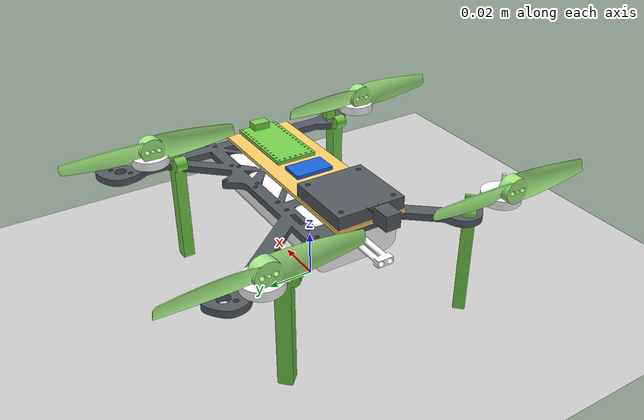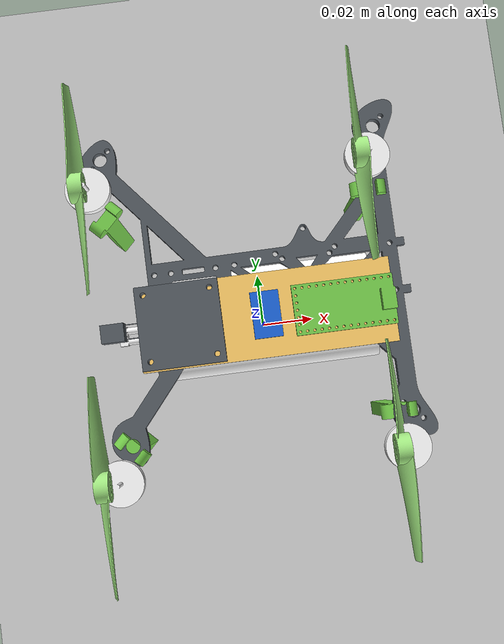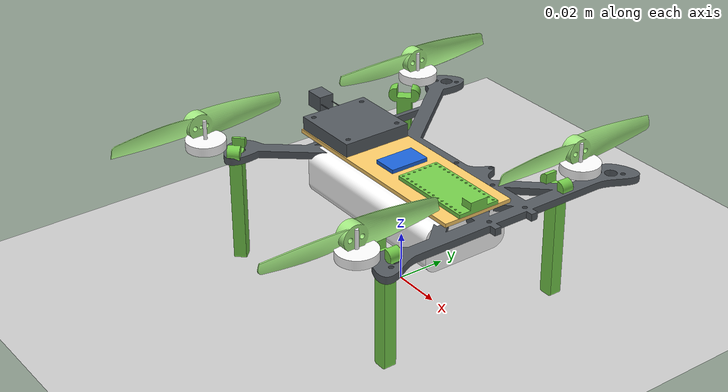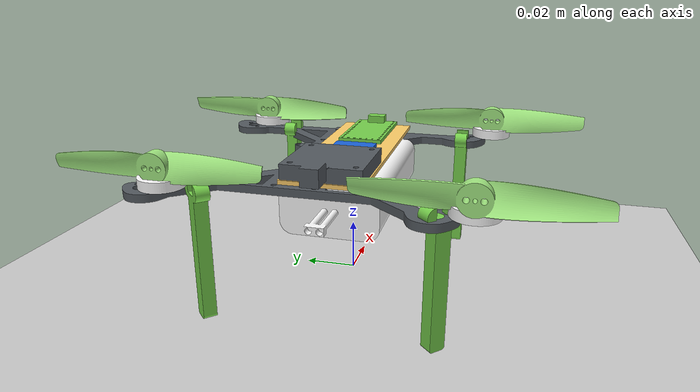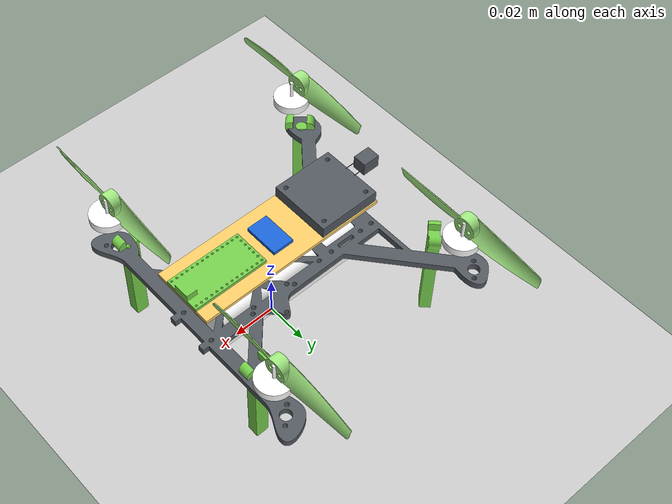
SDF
<?xml version="1.0" ?>
<sdf version="1.11">
  <world name="mini_shell_world">
    <physics name="1ms" type="ignored">
      <max_step_size>0.001</max_step_size>
      <real_time_factor>1.0</real_time_factor>
    </physics>
    <plugin
      filename="gz-sim-physics-system"
      name="gz::sim::systems::Physics">
    </plugin>
    <plugin
      filename="gz-sim-user-commands-system"
      name="gz::sim::systems::UserCommands">
    </plugin>
    <plugin
      filename="gz-sim-scene-broadcaster-system"
      name="gz::sim::systems::SceneBroadcaster">
    </plugin>

    <light type="directional" name="sun">
      <cast_shadows>true</cast_shadows>
      <pose>0 0 10 0 0 0</pose>
      <diffuse>0.8 0.8 0.8 1</diffuse>
      <specular>0.2 0.2 0.2 1</specular>
      <attenuation>
        <range>1000</range>
        <constant>0.9</constant>
        <linear>0.01</linear>
        <quadratic>0.001</quadratic>
      </attenuation>
      <direction>-0.5 0.1 -0.9</direction>
    </light>

    <model name="ground_plane">
      <static>true</static>
      <link name="link">
        <collision name="collision">
          <geometry>
            <plane>
              <normal>0 0 1</normal>
              <size>100 100</size>
            </plane>
          </geometry>
        </collision>
        <visual name="visual">
          <geometry>
            <plane>
              <normal>0 0 1</normal>
              <size>100 100</size>
            </plane>
          </geometry>
          <material>
            <ambient>0.8 0.8 0.8 1</ambient>
            <diffuse>0.8 0.8 0.8 1</diffuse>
            <specular>0.8 0.8 0.8 1</specular>
          </material>
        </visual>
      </link>
    </model>
    <include>
      <uri>model://mini_shell/model_teleop.sdf</uri>
      <name>drone</name>
      <pose>0 0 0.047 0 0 -1.5708</pose>
    </include>
  </world>
</sdf>

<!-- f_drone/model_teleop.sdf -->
<sdf version='1.11'>
  <model name='drone'>
    <link name='drone/base_link'>
      <pose>0 0 0 0 0 0</pose>
      <inertial>
        <pose>-7.20278e-05 -0.00817605 0.000433282 0 0 0</pose>
        <mass>0.200365</mass>
        <inertia>
          <ixx>0.000321462</ixx>
          <ixy>4.4414e-07</ixy>
          <ixz>-3.54974e-07</ixz>
          <iyy>0.000221201</iyy>
          <iyz>5.86328e-06</iyz>
          <izz>0.000489124</izz>
        </inertia>
      </inertial>
      <collision name="base_link_collision">
        <geometry>
          <box>
            <size>0.1029 0.09925 0.10</size>
          </box>
        </geometry>
      </collision>
      <visual name='base_link_visual'>
        <pose>0.040281999999999998 -0.0559978 -0.047511600000000001 1.5708 0 -2.3561899999999998</pose>
        <geometry>
          <mesh>
            <scale>1 1 1</scale>
            <uri>model://f_drone/assets/leg.stl</uri>
          </mesh>
        </geometry>
        <material>
          <diffuse>0.465686262 0.818627477 0.299019992 1</diffuse>
          <ambient>0.465686262 0.818627477 0.299019992 1</ambient>
        </material>
      </visual>
      <visual name='base_link_visual_1'>
        <pose>4.7435499999999997e-06 0.0015624899999999999 -0.019 0 0 0</pose>
        <geometry>
          <mesh>
            <scale>1 1 1</scale>
            <uri>model://f_drone/assets/2s_battery.stl</uri>
          </mesh>
        </geometry>
        <material>
          <diffuse>1 1 1 1</diffuse>
          <ambient>1 1 1 1</ambient>
        </material>
      </visual>
      <visual name='base_link_visual_2'>
        <pose>-0.051445299999999999 -0.0566416 0.0030000000000000001 0 0 0</pose>
        <geometry>
          <mesh>
            <scale>1 1 1</scale>
            <uri>model://f_drone/assets/motor.stl</uri>
          </mesh>
        </geometry>
        <material>
          <diffuse>1 1 1 1</diffuse>
          <ambient>1 1 1 1</ambient>
        </material>
      </visual>
      <visual name='base_link_visual_3'>
        <pose>-0.037908999999999998 0.038994099999999997 -0.047511600000000001 1.5708 5.5511151231257827e-17 -1.5708</pose>
        <geometry>
          <mesh>
            <scale>1 1 1</scale>
            <uri>model://f_drone/assets/leg.stl</uri>
          </mesh>
        </geometry>
        <material>
          <diffuse>0.465686262 0.818627477 0.299019992 1</diffuse>
          <ambient>0.465686262 0.818627477 0.299019992 1</ambient>
        </material>
      </visual>
      <visual name='base_link_visual_4'>
        <pose>4.7435499999999997e-06 0.027497000000000001 0.0045500000000000002 0 0 0</pose>
        <geometry>
          <mesh>
            <scale>1 1 1</scale>
            <uri>model://f_drone/assets/mcu.stl</uri>
          </mesh>
        </geometry>
        <material>
          <diffuse>0.465686262 0.818627477 0.299019992 1</diffuse>
          <ambient>0.465686262 0.818627477 0.299019992 1</ambient>
        </material>
      </visual>
      <visual name='base_link_visual_5'>
        <pose>0.036496199999999999 0.044994100000000002 -0.047511600000000001 1.5708 -5.5511151231257827e-17 1.5708</pose>
        <geometry>
          <mesh>
            <scale>1 1 1</scale>
            <uri>model://f_drone/assets/leg.stl</uri>
          </mesh>
        </geometry>
        <material>
          <diffuse>0.465686262 0.818627477 0.299019992 1</diffuse>
          <ambient>0.465686262 0.818627477 0.299019992 1</ambient>
        </material>
      </visual>
      <visual name='base_link_visual_6'>
        <pose>4.7435499999999997e-06 0.000103915 0.0045500000000000002 0 0 0</pose>
        <geometry>
          <mesh>
            <scale>1 1 1</scale>
            <uri>model://f_drone/assets/imu.stl</uri>
          </mesh>
        </geometry>
        <material>
          <diffuse>0.107843123 0.397058755 0.862744987 1</diffuse>
          <ambient>0.107843123 0.397058755 0.862744987 1</ambient>
        </material>
      </visual>
      <sensor name="imu_sensor" type="imu">
        <pose>0 0 0 0 0 -1.5708</pose>
        <always_on>1</always_on>
        <visualize>true</visualize>
        <topic>imu</topic>
        <imu>
          <orientation_reference_frame>
            <localization>NWU</localization>
            <custom_rpy>0 0 0</custom_rpy>
            <grav_dir_x>1 0 0</grav_dir_x>
          </orientation_reference_frame>
          <enable_orientation>true</enable_orientation>
        </imu>
      </sensor>
      <visual name='base_link_visual_7'>
        <pose>0.051454699999999999 0.042608399999999998 0.0030000000000000001 0 0 0</pose>
        <geometry>
          <mesh>
            <scale>1 1 1</scale>
            <uri>model://f_drone/assets/motor.stl</uri>
          </mesh>
        </geometry>
        <material>
          <diffuse>1 1 1 1</diffuse>
          <ambient>1 1 1 1</ambient>
        </material>
      </visual>
      <visual name='base_link_visual_8'>
        <pose>-0.011815300000000001 -0.00082253299999999997 0 0 0 0</pose>
        <geometry>
          <mesh>
            <scale>1 1 1</scale>
            <uri>model://f_drone/assets/base_link.stl</uri>
          </mesh>
        </geometry>
        <material>
          <diffuse>0.328431249 0.352941275 0.377451241 1</diffuse>
          <ambient>0.328431249 0.352941275 0.377451241 1</ambient>
        </material>
      </visual>
      <visual name='base_link_visual_9'>
        <pose>4.7435499999999997e-06 0.000103915 0.00298 0 0 0</pose>
        <geometry>
          <mesh>
            <scale>1 1 1</scale>
            <uri>model://f_drone/assets/custom_pcb.stl</uri>
          </mesh>
        </geometry>
        <material>
          <diffuse>1 0.808823764 0.411765009 1</diffuse>
          <ambient>1 0.808823764 0.411765009 1</ambient>
        </material>
      </visual>
      <visual name='base_link_visual_10'>
        <pose>-0.051445299999999999 0.042608399999999998 0.0030000000000000001 0 0 0</pose>
        <geometry>
          <mesh>
            <scale>1 1 1</scale>
            <uri>model://f_drone/assets/motor.stl</uri>
          </mesh>
        </geometry>
        <material>
          <diffuse>1 1 1 1</diffuse>
          <ambient>1 1 1 1</ambient>
        </material>
      </visual>
      <visual name='base_link_visual_11'>
        <pose>-0.037236999999999999 -0.052462300000000003 -0.047511600000000001 1.5708 -2.2204460492503131e-16 -0.78539800000000004</pose>
        <geometry>
          <mesh>
            <scale>1 1 1</scale>
            <uri>model://f_drone/assets/leg.stl</uri>
          </mesh>
        </geometry>
        <material>
          <diffuse>0.465686262 0.818627477 0.299019992 1</diffuse>
          <ambient>0.465686262 0.818627477 0.299019992 1</ambient>
        </material>
      </visual>
      <visual name='base_link_visual_12'>
        <pose>0.051454699999999999 -0.0566416 0.0030000000000000001 0 0 0</pose>
        <geometry>
          <mesh>
            <scale>1 1 1</scale>
            <uri>model://f_drone/assets/motor.stl</uri>
          </mesh>
        </geometry>
        <material>
          <diffuse>1 1 1 1</diffuse>
          <ambient>1 1 1 1</ambient>
        </material>
      </visual>
      <visual name='base_link_visual_13'>
        <pose>4.7435499999999997e-06 -0.029896099999999998 0.0045500000000000002 0 0 0</pose>
        <geometry>
          <mesh>
            <scale>1 1 1</scale>
            <uri>model://f_drone/assets/esc.stl</uri>
          </mesh>
        </geometry>
        <material>
          <diffuse>0.328431249 0.352941275 0.377451241 1</diffuse>
          <ambient>0.328431249 0.352941275 0.377451241 1</ambient>
        </material>
      </visual>
      <!-- Rangefinder at end of drone-->
      <sensor name='optical_flow' type='gpu_lidar'>
          <pose relative_to='drone/base_link'>0 0.055 -0.0045 0 1.5708 -1.5708</pose>
          <topic>radar</topic>
          <enable_metrics>false</enable_metrics>
          <update_rate>100</update_rate>
          <ray>
              <scan>
                  <horizontal>
                      <samples>10</samples>
                      <resolution>1</resolution>
                      <min_angle>-0.2186</min_angle>
                      <max_angle>0.2186</max_angle>
                  </horizontal>
                  <vertical>
                      <samples>1</samples>
                      <resolution>0.01</resolution>
                      <min_angle>0</min_angle>
                      <max_angle>0</max_angle>
                  </vertical>
              </scan>
              <range>
                <min>0.01</min>
                <max>2.0</max>
                <resolution>0.01</resolution>
              </range>
          </ray>
          <always_on>1</always_on>
          <visualize>true</visualize>
      </sensor>
    </link>
    <link name='drone/prop_1'>
      <pose>-0.0514453 0.0425284 0.0105 0 0 0</pose>
      <inertial>
        <!-- From model.urdf: thin blade (iyy~izz >> ixx), not a disc. -->
        <pose>0 0 9.46113e-05 0 0 0</pose>
        <mass>0.000758683</mass>
        <inertia>
          <ixx>6.58743e-09</ixx>
          <ixy>-1.73562e-09</ixy>
          <ixz>0</ixz>
          <iyy>1.27556e-07</iyy>
          <iyz>0</iyz>
          <izz>1.31648e-07</izz>
        </inertia>
      </inertial>
      <visual name='prop_1_visual'>
        <pose>0 -0.002718365 0 3.1415899999999999 0 0</pose>
        <geometry>
          <mesh>
            <scale>1 1 1</scale>
            <uri>model://f_drone/assets/prop.stl</uri>
          </mesh>
        </geometry>
        <material>
          <diffuse>0.642156243 0.921568751 0.509803772 1</diffuse>
          <ambient>0.642156243 0.921568751 0.509803772 1</ambient>
        </material>
      </visual>
    </link>
    <joint name='drone/joint_1' type='revolute'>
      <pose relative_to='drone/base_link'>-0.0514453 0.0425284 0.0105 0 0 0</pose>
      <child>drone/prop_1</child>
      <parent>drone/base_link</parent>
      <axis>
        <xyz>0 0 1</xyz>
        <limit>
          <lower>-1e+16</lower>
          <upper>1e+16</upper>
          <effort>100</effort>
          <velocity>20000</velocity>
        </limit>
      </axis>
    </joint>
    <link name='drone/prop_2'>
      <pose>-0.0514453 -0.0567216 0.010625 0 0 0</pose>
      <inertial>
        <!-- From model.urdf: thin blade (iyy~izz >> ixx), not a disc. -->
        <pose>0 0 -9.46113e-05 0 0 0</pose>
        <mass>0.000758683</mass>
        <inertia>
          <ixx>6.58743e-09</ixx>
          <ixy>1.73562e-09</ixy>
          <ixz>0</ixz>
          <iyy>1.27556e-07</iyy>
          <iyz>0</iyz>
          <izz>1.31648e-07</izz>
        </inertia>
      </inertial>
      <visual name='prop_2_visual'>
        <pose>0 -0.002718365 0 0 0 0</pose>
        <geometry>
          <mesh>
            <scale>1 1 1</scale>
            <uri>model://f_drone/assets/prop.stl</uri>
          </mesh>
        </geometry>
        <material>
          <diffuse>0.642156243 0.921568751 0.509803772 1</diffuse>
          <ambient>0.642156243 0.921568751 0.509803772 1</ambient>
        </material>
      </visual>
    </link>
    <joint name='drone/joint_2' type='revolute'>
      <pose relative_to='drone/base_link'>-0.0514453 -0.0567216 0.010625 0 0 0</pose>
      <child>drone/prop_2</child>
      <parent>drone/base_link</parent>
      <axis>
        <xyz>0 0 1</xyz>
        <limit>
          <lower>-1e+16</lower>
          <upper>1e+16</upper>
          <effort>100</effort>
          <velocity>20000</velocity>
        </limit>
      </axis>
    </joint>
    <link name='drone/prop_3'>
      <pose>0.0514547 0.0425284 0.010625 0 0 0</pose>
      <inertial>
        <!-- From model.urdf: thin blade (iyy~izz >> ixx), not a disc. -->
        <pose>0 0 -9.46113e-05 0 0 0</pose>
        <mass>0.000758683</mass>
        <inertia>
          <ixx>6.58743e-09</ixx>
          <ixy>1.73562e-09</ixy>
          <ixz>0</ixz>
          <iyy>1.27556e-07</iyy>
          <iyz>0</iyz>
          <izz>1.31648e-07</izz>
        </inertia>
      </inertial>
      <visual name='prop_3_visual'>
        <pose>0 -0.002718365 0 0 0 0</pose>
        <geometry>
          <mesh>
            <scale>1 1 1</scale>
            <uri>model://f_drone/assets/prop.stl</uri>
          </mesh>
        </geometry>
        <material>
          <diffuse>0.642156243 0.921568751 0.509803772 1</diffuse>
          <ambient>0.642156243 0.921568751 0.509803772 1</ambient>
        </material>
      </visual>
    </link>
    <joint name='drone/joint_3' type='revolute'>
      <pose relative_to='drone/base_link'>0.0514547 0.0425284 0.010625 0 0 0</pose>
      <child>drone/prop_3</child>
      <parent>drone/base_link</parent>
      <axis>
        <xyz>0 0 1</xyz>
        <limit>
          <lower>-1e+16</lower>
          <upper>1e+16</upper>
          <effort>100</effort>
          <velocity>20000</velocity>
        </limit>
      </axis>
    </joint>
    <link name='drone/prop_4'>
      <pose>0.0514547 -0.0567216 0.0105 0 0 0</pose>
      <inertial>
        <!-- From model.urdf: thin blade (iyy~izz >> ixx), not a disc. -->
        <pose>0 0 9.46113e-05 0 0 0</pose>
        <mass>0.000758683</mass>
        <inertia>
          <ixx>6.58743e-09</ixx>
          <ixy>-1.73562e-09</ixy>
          <ixz>0</ixz>
          <iyy>1.27556e-07</iyy>
          <iyz>0</iyz>
          <izz>1.31648e-07</izz>
        </inertia>
      </inertial>
      <visual name='prop_4_visual'>
        <pose>0 -0.00543673 0 3.1415899999999999 0 0</pose>
        <geometry>
          <mesh>
            <scale>1 1 1</scale>
            <uri>model://f_drone/assets/prop.stl</uri>
          </mesh>
        </geometry>
        <material>
          <diffuse>0.642156243 0.921568751 0.509803772 1</diffuse>
          <ambient>0.642156243 0.921568751 0.509803772 1</ambient>
        </material>
      </visual>
    </link>
    <joint name='drone/joint_4' type='revolute'>
      <pose relative_to='drone/base_link'>0.0514547 -0.0567216 0.0105 0 0 0</pose>
      <child>drone/prop_4</child>
      <parent>drone/base_link</parent>
      <axis>
        <xyz>0 0 1</xyz>
        <limit>
          <lower>-1e+16</lower>
          <upper>1e+16</upper>
          <effort>100</effort>
          <velocity>20000</velocity>
        </limit>
      </axis>
    </joint>

    <!-- All necessary plugins to interface with external drone -->
      <plugin
        filename="gz-sim-imu-system"
        name="gz::sim::systems::Imu">
      </plugin>

      <plugin
        filename="gz-sim-sensors-system"
        name="gz::sim::systems::Sensors">
        <render_engine>ogre2</render_engine>
        <disable_on_drained_battery>false</disable_on_drained_battery>
      </plugin>

      <plugin filename="gz-sim-linearbatteryplugin-system"
        name="gz::sim::systems::LinearBatteryPlugin">
        <!--Li-ion battery spec from GAONENG 2S 18650 datasheet * Linked in Hardware -->
        <battery_name>2s_battery</battery_name>
        <voltage>8.4</voltage>
        <open_circuit_voltage_constant_coef>8.4</open_circuit_voltage_constant_coef>
        <open_circuit_voltage_linear_coef>-2.0</open_circuit_voltage_linear_coef>
        <initial_charge>3.0</initial_charge>
        <capacity>3.0 </capacity>
        <resistance>0.07</resistance>
        <smooth_current_tau>2.0</smooth_current_tau>
        <enable_recharge>false</enable_recharge>
        <charging_time>3.0</charging_time>
        <soc_threshold>0.51</soc_threshold>
        <!-- Consumer-specific -->
        <power_load>2.1</power_load>
        <start_on_motion>true</start_on_motion>
      </plugin>

    <!-- Need to output state for all the joints and links -->
      <plugin
        filename="gz-sim-joint-state-publisher-system"
        name="gz::sim::systems::JointStatePublisher">
        <joint_name>drone/joint_1</joint_name>
        <joint_name>drone/joint_2</joint_name>
        <joint_name>drone/joint_3</joint_name>
        <joint_name>drone/joint_4</joint_name>
      </plugin>

      <plugin
        filename="gz-sim-pose-publisher-system"
        name="gz::sim::systems::PosePublisher">
        <publish_link_pose>true</publish_link_pose>
        <use_pose_vector_msg>true</use_pose_vector_msg>
        <static_publisher>false</static_publisher>
        <static_update_frequency>1</static_update_frequency>
      </plugin>

      <plugin
        filename="gz-sim-odometry-publisher-system"
        name="gz::sim::systems::OdometryPublisher">
        <odom_frame>odom</odom_frame>
        <robot_base_frame>drone/base_link</robot_base_frame>
      </plugin>
    <!-- DroneSerial intentionally absent: teleop is pure Gazebo, no Teensy. -->

    <!-- Send Actuator Velocities (mapped from PWM in our case)
      gz topic -t /drone/gazebo/command/motor_speed -m gz.msgs.Actuators -p 'velocity:[250, 250, 250, 250]'
    -->
    <plugin
      filename="gz-sim-multicopter-motor-model-system"
      name="gz::sim::systems::MulticopterMotorModel">
      <robotNamespace>drone</robotNamespace>
      <jointName>drone/joint_1</jointName>
      <linkName>drone/prop_1</linkName>
      <turningDirection>cw</turningDirection>
      <maxRotVelocity>5760</maxRotVelocity>
      <motorConstant>6.0e-08</motorConstant>
      <momentConstant>0.005964552</momentConstant>
      <rotorDragCoefficient>8.06428e-05</rotorDragCoefficient>
      <rollingMomentCoefficient>0.0000001</rollingMomentCoefficient>
      <rotorVelocitySlowdownSim>20</rotorVelocitySlowdownSim>
      <actuator_number>0</actuator_number>
      <commandSubTopic>gazebo/command/motor_speed</commandSubTopic>
      <motorSpeedPubTopic>motor_speed/0</motorSpeedPubTopic>
      <motorType>velocity</motorType>
    </plugin>
    <plugin
      filename="gz-sim-multicopter-motor-model-system"
      name="gz::sim::systems::MulticopterMotorModel">
      <robotNamespace>drone</robotNamespace>
      <jointName>drone/joint_2</jointName>
      <linkName>drone/prop_2</linkName>
      <turningDirection>ccw</turningDirection>
      <maxRotVelocity>5760</maxRotVelocity>
      <motorConstant>6.0e-08</motorConstant>
      <momentConstant>0.005964552</momentConstant>
      <rotorDragCoefficient>8.06428e-05</rotorDragCoefficient>
      <rollingMomentCoefficient>0.0000001</rollingMomentCoefficient>
      <rotorVelocitySlowdownSim>20</rotorVelocitySlowdownSim>
      <actuator_number>1</actuator_number>
      <commandSubTopic>gazebo/command/motor_speed</commandSubTopic>
      <motorSpeedPubTopic>motor_speed/1</motorSpeedPubTopic>
      <motorType>velocity</motorType>
    </plugin>
    <plugin
      filename="gz-sim-multicopter-motor-model-system"
      name="gz::sim::systems::MulticopterMotorModel">
      <robotNamespace>drone</robotNamespace>
      <jointName>drone/joint_3</jointName>
      <linkName>drone/prop_3</linkName>
      <turningDirection>ccw</turningDirection>
      <maxRotVelocity>5760</maxRotVelocity>
      <motorConstant>6.0e-08</motorConstant>
      <momentConstant>0.005964552</momentConstant>
      <rotorDragCoefficient>8.06428e-05</rotorDragCoefficient>
      <rollingMomentCoefficient>0.0000001</rollingMomentCoefficient>
      <rotorVelocitySlowdownSim>20</rotorVelocitySlowdownSim>
      <actuator_number>2</actuator_number>
      <commandSubTopic>gazebo/command/motor_speed</commandSubTopic>
      <motorSpeedPubTopic>motor_speed/2</motorSpeedPubTopic>
      <motorType>velocity</motorType>
    </plugin>
    <plugin
      filename="gz-sim-multicopter-motor-model-system"
      name="gz::sim::systems::MulticopterMotorModel">
      <robotNamespace>drone</robotNamespace>
      <jointName>drone/joint_4</jointName>
      <linkName>drone/prop_4</linkName>
      <turningDirection>cw</turningDirection>
      <maxRotVelocity>5760</maxRotVelocity>
      <motorConstant>6.0e-08</motorConstant>
      <momentConstant>0.005964552</momentConstant>
      <rotorDragCoefficient>8.06428e-05</rotorDragCoefficient>
      <rollingMomentCoefficient>0.0000001</rollingMomentCoefficient>
      <rotorVelocitySlowdownSim>20</rotorVelocitySlowdownSim>
      <actuator_number>3</actuator_number>
      <commandSubTopic>gazebo/command/motor_speed</commandSubTopic>
      <motorSpeedPubTopic>motor_speed/3</motorSpeedPubTopic>
      <motorType>velocity</motorType>
    </plugin>
    <!-- Velocity controller driven by the Gazebo Teleop pad. -->
    <plugin
      filename="gz-sim-multicopter-control-system"
      name="gz::sim::systems::MulticopterVelocityControl">
      <robotNamespace>drone</robotNamespace>
      <commandSubTopic>cmd_vel</commandSubTopic>
      <enableSubTopic>enable</enableSubTopic>
      <comLinkName>drone/base_link</comLinkName>
      <velocityGain>1.25 1.25 0.2425</velocityGain>
      <attitudeGain>0.02 0.02 0.02</attitudeGain>
      <angularRateGain>0.005 0.005 0.005</angularRateGain>
      <!-- REQUIRED: without these the commanded velocity is clamped to the
           plugin defaults and the rotors barely spin. -->
      <maximumLinearAcceleration>2 2 2</maximumLinearAcceleration>
      <maximumLinearVelocity>2 2 2</maximumLinearVelocity>
      <maximumAngularVelocity>3 3 3</maximumAngularVelocity>
      <rotorConfiguration>
        <rotor>
          <jointName>drone/joint_1</jointName>
          <forceConstant>6.0e-08</forceConstant>
          <momentConstant>0.005964552</momentConstant>
          <direction>-1</direction>
        </rotor>
        <rotor>
          <jointName>drone/joint_2</jointName>
          <forceConstant>6.0e-08</forceConstant>
          <momentConstant>0.005964552</momentConstant>
          <direction>1</direction>
        </rotor>
        <rotor>
          <jointName>drone/joint_3</jointName>
          <forceConstant>6.0e-08</forceConstant>
          <momentConstant>0.005964552</momentConstant>
          <direction>1</direction>
        </rotor>
        <rotor>
          <jointName>drone/joint_4</jointName>
          <forceConstant>6.0e-08</forceConstant>
          <momentConstant>0.005964552</momentConstant>
          <direction>-1</direction>
        </rotor>
      </rotorConfiguration>
    </plugin>
  </model>
</sdf>
